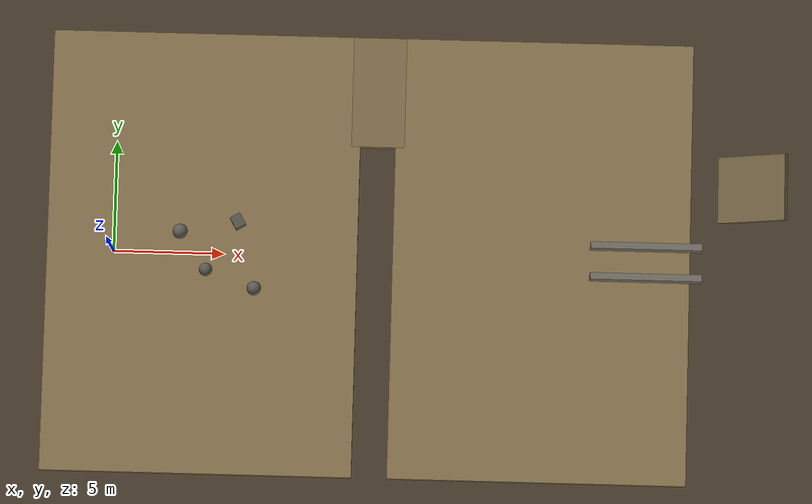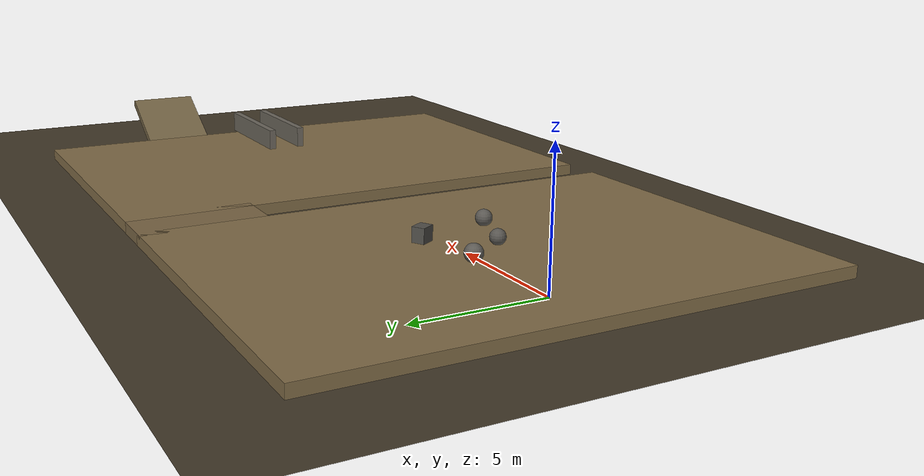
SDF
<?xml version="1.0" ?>
<sdf version="1.9">
  <world name="hard">

    <physics name="1ms" type="ignored">
      <max_step_size>0.001</max_step_size>
      <real_time_factor>1.0</real_time_factor>
    </physics>

    <plugin filename="gz-sim-physics-system"
            name="gz::sim::systems::Physics"/>
    <plugin filename="gz-sim-user-commands-system"
            name="gz::sim::systems::UserCommands"/>
    <plugin filename="gz-sim-scene-broadcaster-system"
            name="gz::sim::systems::SceneBroadcaster"/>
    <plugin filename="gz-sim-sensors-system"
            name="gz::sim::systems::Sensors">
      <render_engine>ogre2</render_engine>
    </plugin>
    <plugin filename="gz-sim-imu-system"
            name="gz::sim::systems::Imu"/>
    <plugin filename="gz-sim-contact-system"
            name="gz::sim::systems::Contact"/>

    <gravity>0 0 -9.8</gravity>
    <magnetic_field>5.565e-6 2.289e-5 -4.239e-5</magnetic_field>

    <scene>
      <ambient>0.45 0.45 0.45 1</ambient>
      <background>0.66 0.72 0.80 1</background>
      <shadows>true</shadows>
    </scene>

    <light type="directional" name="sun">
      <cast_shadows>true</cast_shadows>
      <pose>0 0 12 0 0 0</pose>
      <diffuse>0.85 0.83 0.78 1</diffuse>
      <specular>0.2 0.2 0.2 1</specular>
      <attenuation>
        <range>1000</range>
        <constant>0.9</constant>
        <linear>0.01</linear>
        <quadratic>0.001</quadratic>
      </attenuation>
      <direction>-0.6 0.4 -0.7</direction>
    </light>

    <!-- Pit floor, 0.45 m below the driving surface. -->
    <model name="ground_plane">
      <static>true</static>
      <link name="link">
        <collision name="collision">
          <geometry><plane><normal>0 0 1</normal><size>160 160</size></plane></geometry>
          <surface>
            <friction><ode><mu>0.7</mu><mu2>0.7</mu2></ode></friction>
          </surface>
        </collision>
        <visual name="visual">
          <geometry><plane><normal>0 0 1</normal><size>160 160</size></plane></geometry>
          <material>
            <ambient>0.18 0.15 0.11 1</ambient>
            <diffuse>0.26 0.22 0.16 1</diffuse>
          </material>
        </visual>
      </link>
    </model>

    <!-- ======================================= driving platform ==== -->
    <!--
      Approach side: spawn at (0, 0, 0.60) and drive +x. The platform top sits
      at z = 0.45.
    -->
    <model name="platform_near">
      <static>true</static>
      <pose>4.0 0.0 0.225 0 0 0</pose>
      <link name="link">
        <collision name="collision">
          <geometry><box><size>14.0 20.0 0.45</size></box></geometry>
          <surface><friction><ode><mu>0.9</mu><mu2>0.9</mu2></ode></friction></surface>
        </collision>
        <visual name="visual">
          <geometry><box><size>14.0 20.0 0.45</size></box></geometry>
          <material>
            <ambient>0.38 0.32 0.22 1</ambient>
            <diffuse>0.50 0.42 0.28 1</diffuse>
          </material>
        </visual>
      </link>
    </model>

    <model name="platform_far">
      <static>true</static>
      <pose>19.3 0.0 0.225 0 0 0</pose>
      <link name="link">
        <collision name="collision">
          <geometry><box><size>13.4 20.0 0.45</size></box></geometry>
          <surface><friction><ode><mu>0.9</mu><mu2>0.9</mu2></ode></friction></surface>
        </collision>
        <visual name="visual">
          <geometry><box><size>13.4 20.0 0.45</size></box></geometry>
          <material>
            <ambient>0.38 0.32 0.22 1</ambient>
            <diffuse>0.50 0.42 0.28 1</diffuse>
          </material>
        </visual>
      </link>
    </model>

    <model name="ditch_bridge_flank">
      <static>true</static>
      <pose>11.8 7.5 0.225 0 0 0</pose>
      <link name="link">
        <collision name="collision">
          <geometry><box><size>2.4 5.0 0.45</size></box></geometry>
          <surface><friction><ode><mu>0.9</mu><mu2>0.9</mu2></ode></friction></surface>
        </collision>
        <visual name="visual">
          <geometry><box><size>2.4 5.0 0.45</size></box></geometry>
          <material>
            <ambient>0.36 0.30 0.21 1</ambient>
            <diffuse>0.48 0.40 0.27 1</diffuse>
          </material>
        </visual>
      </link>
    </model>

    <!-- ============================================ dense rocks ==== -->
    <!-- T03: obstacle avoidance where the gaps are tight but passable. -->
    <model name="rock_field_1">
      <static>true</static>
      <pose>3.0 0.9 0.72 0 0 0.4</pose>
      <link name="link">
        <collision name="collision">
          <geometry><sphere><radius>0.34</radius></sphere></geometry>
        </collision>
        <visual name="visual">
          <geometry><sphere><radius>0.34</radius></sphere></geometry>
          <material><diffuse>0.36 0.35 0.33 1</diffuse></material>
        </visual>
      </link>
    </model>

    <model name="rock_field_2">
      <static>true</static>
      <pose>4.2 -0.8 0.70 0 0 1.2</pose>
      <link name="link">
        <collision name="collision">
          <geometry><sphere><radius>0.30</radius></sphere></geometry>
        </collision>
        <visual name="visual">
          <geometry><sphere><radius>0.30</radius></sphere></geometry>
          <material><diffuse>0.34 0.33 0.31 1</diffuse></material>
        </visual>
      </link>
    </model>

    <model name="rock_field_3">
      <static>true</static>
      <pose>5.6 1.4 0.74 0 0 2.1</pose>
      <link name="link">
        <collision name="collision">
          <geometry><box><size>0.6 0.5 0.58</size></box></geometry>
        </collision>
        <visual name="visual">
          <geometry><box><size>0.6 0.5 0.58</size></box></geometry>
          <material><diffuse>0.32 0.31 0.29 1</diffuse></material>
        </visual>
      </link>
    </model>

    <model name="rock_field_4">
      <static>true</static>
      <pose>6.4 -1.6 0.71 0 0 0.9</pose>
      <link name="link">
        <collision name="collision">
          <geometry><sphere><radius>0.32</radius></sphere></geometry>
        </collision>
        <visual name="visual">
          <geometry><sphere><radius>0.32</radius></sphere></geometry>
          <material><diffuse>0.35 0.34 0.32 1</diffuse></material>
        </visual>
      </link>
    </model>

    <!-- ======================================= narrow corridor ==== -->
    <model name="corridor_wall_left">
      <static>true</static>
      <pose>24.0 0.7 0.90 0 0 0</pose>
      <link name="link">
        <collision name="collision">
          <geometry><box><size>5.0 0.3 0.9</size></box></geometry>
        </collision>
        <visual name="visual">
          <geometry><box><size>5.0 0.3 0.9</size></box></geometry>
          <material><diffuse>0.42 0.40 0.36 1</diffuse></material>
        </visual>
      </link>
    </model>

    <model name="corridor_wall_right">
      <static>true</static>
      <pose>24.0 -0.7 0.90 0 0 0</pose>
      <link name="link">
        <collision name="collision">
          <geometry><box><size>5.0 0.3 0.9</size></box></geometry>
        </collision>
        <visual name="visual">
          <geometry><box><size>5.0 0.3 0.9</size></box></geometry>
          <material><diffuse>0.42 0.40 0.36 1</diffuse></material>
        </visual>
      </link>
    </model>

    <!-- ============================================ steep slope ==== -->
    <model name="steep_ramp">
      <static>true</static>
      <pose>28.5 3.5 0.55 0 -0.55 0</pose>
      <link name="link">
        <collision name="collision">
          <geometry><box><size>4.0 3.0 0.3</size></box></geometry>
          <surface><friction><ode><mu>0.9</mu><mu2>0.9</mu2></ode></friction></surface>
        </collision>
        <visual name="visual">
          <geometry><box><size>4.0 3.0 0.3</size></box></geometry>
          <material><diffuse>0.44 0.38 0.26 1</diffuse></material>
        </visual>
      </link>
    </model>

  </world>
</sdf>
